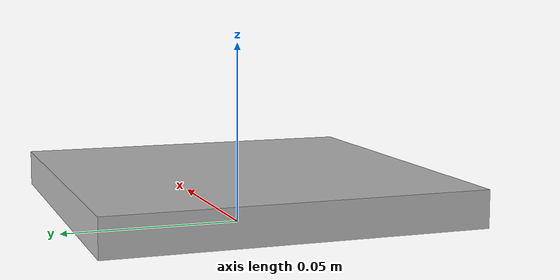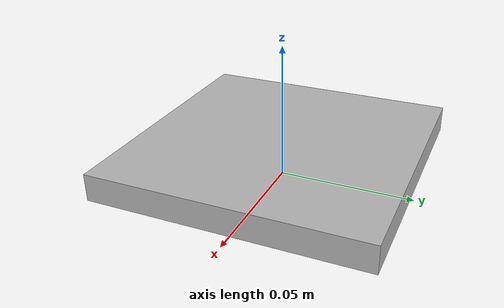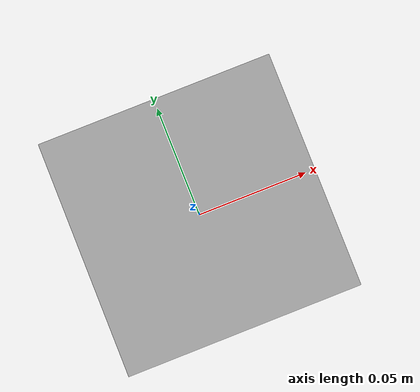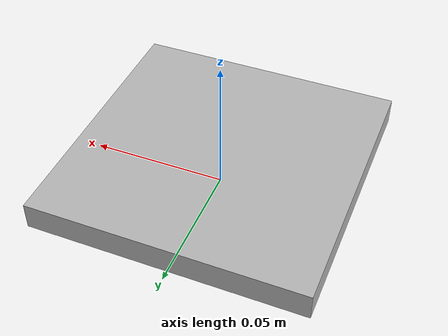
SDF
<?xml version='1.0'?>
<sdf version='1.4'>
  <model name='marker2'>
    <static>false</static>
    <link name='link'>
      <collision name='collision'>
        <geometry>
          <box>
                <size>.1 .1 .01</size>
            </box>
        </geometry>
        <surface>
          <friction>
            <ode>
              <mu>0.5</mu>
              <mu2>.5</mu2>
            </ode>
          </friction>
        </surface>
      </collision>

      <visual name='visual_0'>
        <pose> 0 0 .01 0 0 0</pose>

        <cast_shadows>true</cast_shadows>
        <geometry>
          <box>
                <size>.1 .1 .01</size>
            </box>
        </geometry>
        <material>
          <script>
            <uri>model://marker2/materials/scripts</uri>
            <uri>model://marker2/materials/textures</uri>
            <name>marker2/diffuce</name>
          </script>
        </material>
      </visual>
    </link>
  </model>
</sdf>
